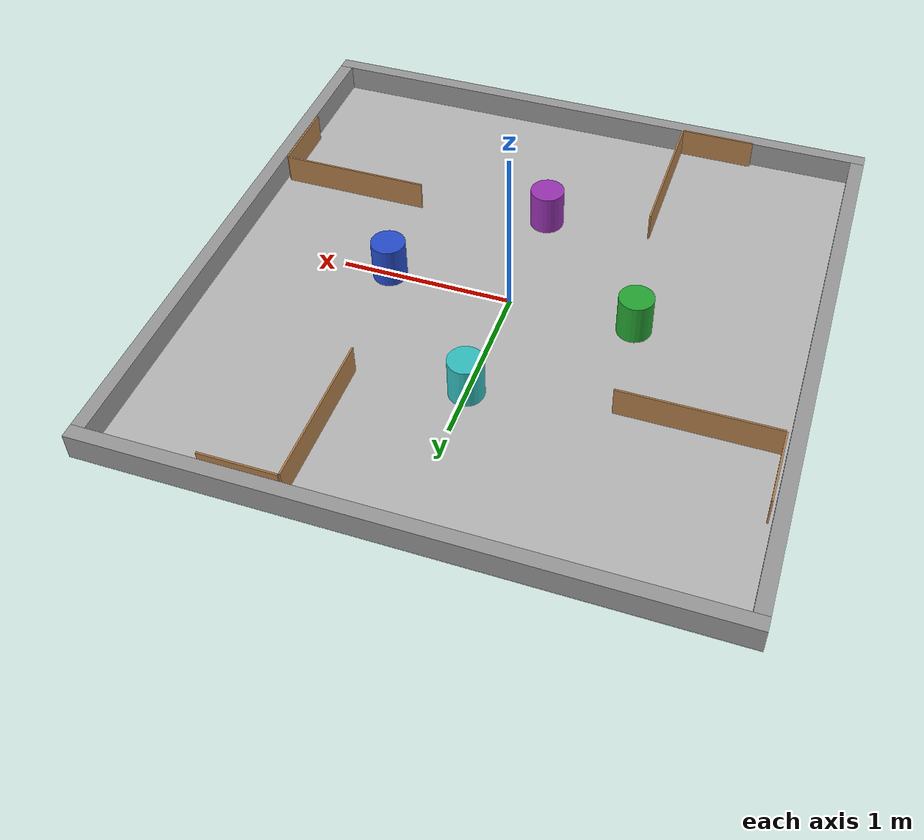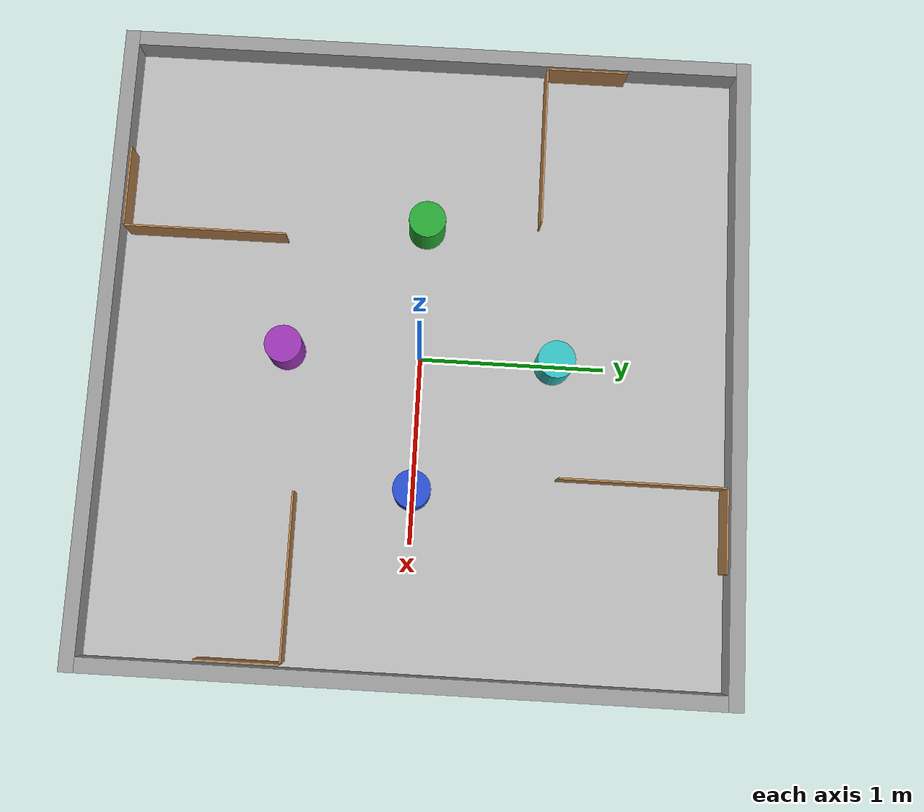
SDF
<sdf version="1.6">
 <world name="default">
  <light name="sun" type="directional">
   <pose>0 0 10 0 -0 0</pose>
   <diffuse>0.8 0.8 0.8 1</diffuse>
   <specular>0.2 0.2 0.2 1</specular>
   <attenuation>
    <range>1000</range>
    <constant>0.9</constant>
    <linear>0.01</linear>
    <quadratic>0.001</quadratic>
   </attenuation>
   <direction>-0.5 0.1 -0.9</direction>
  </light>
  <gravity>0 0 -9.8</gravity>
  <magnetic_field>6e-06 2.3e-05 -4.2e-05</magnetic_field>
  <atmosphere type="adiabatic"/>
  <physics name="default_physics" default="0" type="ode">
   <max_step_size>0.001</max_step_size>
   <real_time_factor>1</real_time_factor>
   <real_time_update_rate>1000</real_time_update_rate>
  </physics>
  <scene><ambient>0.4 0.4 0.4 1</ambient><background>0.7 0.7 0.7 1</background><shadows>1</shadows></scene>
  <spherical_coordinates>
   <surface_model>EARTH_WGS84</surface_model>
   <latitude_deg>0</latitude_deg>
   <longitude_deg>0</longitude_deg>
   <elevation>0</elevation>
   <heading_deg>0</heading_deg>
  </spherical_coordinates>
  <include><uri>model://obstacle_avoidance</uri></include>
  <include><uri>model://cr3_arena_walls</uri></include>
 </world>
</sdf>

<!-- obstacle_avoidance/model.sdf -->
<sdf version="1.4">
<model name="obstacle_avoidance">
  <static>true</static>
    <link name="floor">
      <collision name="collision">
        <geometry>
          <plane>
            <normal>0 0 1</normal>
            <size>3.5 3.5</size>
          </plane>
        </geometry>
        <surface>
          <friction>
            <ode>
              <mu>100</mu>
              <mu2>50</mu2>
            </ode>
          </friction>
        </surface>
      </collision>
      <visual name="visual">
        <cast_shadows>false</cast_shadows>
        <geometry>
          <plane>
            <normal>0 0 1</normal>
            <size>3.5 3.5</size>
          </plane>
        </geometry>
        <material>
          <script>
            <uri>model://obstacle_avoidance/materials/scripts</uri>
            <uri>model://obstacle_avoidance/materials/textures</uri>
            <name>ObstacleAvoidanceFloor/Image</name>
          </script>
        </material>
      </visual>
    </link>
    <link name='BLUE1'>
      <pose frame=''>0.72334 0 0.125 0 0 0</pose>
      <collision name='coll'>
        <geometry>
          <cylinder>
            <radius>0.1</radius>
            <length>0.25</length>
          </cylinder>
        </geometry>
        <max_contacts>10</max_contacts>
        <surface>
          <bounce/>
          <friction>
            <ode/>
          </friction>
          <contact>
            <ode/>
          </contact>
        </surface>
      </collision>
      <visual name='vis'>
        <geometry>
          <cylinder>
            <radius>0.1</radius>
            <length>0.25</length>
          </cylinder>
        </geometry>
        <material>
          <script>
            <uri>file://media/materials/scripts/gazebo.material</uri>
            <name>Gazebo/Blue</name>
          </script>
        </material>
      </visual>
    </link>
    <link name='PURPLE1'>
      <pose frame=''>0 -0.72334 0.125 0 0 0</pose>
      <collision name='coll'>
        <geometry>
          <cylinder>
            <radius>0.1</radius>
            <length>0.25</length>
          </cylinder>
        </geometry>
        <max_contacts>10</max_contacts>
        <surface>
          <bounce/>
          <friction>
            <ode/>
          </friction>
          <contact>
            <ode/>
          </contact>
        </surface>
      </collision>
      <visual name='vis'>
        <geometry>
          <cylinder>
            <radius>0.1</radius>
            <length>0.25</length>
          </cylinder>
        </geometry>
        <material>
          <script>
            <uri>file://media/materials/scripts/gazebo.material</uri>
            <name>Gazebo/Purple</name>
          </script>
        </material>
      </visual>
    </link>
    <link name='GREEN1'>
      <pose frame=''>-0.72334 0 0.125 0 0 0</pose>
      <collision name='coll'>
        <geometry>
          <cylinder>
            <radius>0.1</radius>
            <length>0.25</length>
          </cylinder>
        </geometry>
        <max_contacts>10</max_contacts>
        <surface>
          <bounce/>
          <friction>
            <ode/>
          </friction>
          <contact>
            <ode/>
          </contact>
        </surface>
      </collision>
      <visual name='vis'>
        <geometry>
          <cylinder>
            <radius>0.1</radius>
            <length>0.25</length>
          </cylinder>
        </geometry>
        <material>
          <script>
            <uri>file://media/materials/scripts/gazebo.material</uri>
            <name>Gazebo/Green</name>
          </script>
        </material>
      </visual>
    </link>
    <link name='TURQ1'>
      <pose frame=''>0 0.72334 0.125 0 0 0</pose>
      <collision name='coll'>
        <geometry>
          <cylinder>
            <radius>0.1</radius>
            <length>0.25</length>
          </cylinder>
        </geometry>
        <max_contacts>10</max_contacts>
        <surface>
          <bounce/>
          <friction>
            <ode/>
          </friction>
          <contact>
            <ode/>
          </contact>
        </surface>
      </collision>
      <visual name='vis'>
        <geometry>
          <cylinder>
            <radius>0.1</radius>
            <length>0.25</length>
          </cylinder>
        </geometry>
        <material>
          <script>
            <uri>file://media/materials/scripts/gazebo.material</uri>
            <name>Gazebo/Turquoise</name>
          </script>
        </material>
      </visual>
    </link>
    <link name='L_wall_tl'>
      <pose frame=''>-0.83834 -1.20833 0.09 0 0 0</pose>
      <collision name='long_coll'>
        <geometry>
          <box>
            <size>0.01 0.88 0.18</size>
          </box>
        </geometry>
        <pose frame=''>0.22 0.005 0 0 0 0</pose>
      </collision>
      <visual name='long_vis'>
        <pose frame=''>0.22 0.005 0 0 0 0</pose>
        <geometry>
          <box>
            <size>0.01 0.88 0.18</size>
          </box>
        </geometry>
        <material>
          <script>
            <uri>file://media/materials/scripts/gazebo.material</uri>
            <name>Gazebo/Wood</name>
          </script>
        </material>
      </visual>
      <collision name='short_coll'>
        <geometry>
          <box>
            <size>0.44 0.01 0.18</size>
          </box>
        </geometry>
        <pose frame=''>-0.005 -0.44 0 0 0 0</pose>
      </collision>
      <visual name='short_vis'>
        <pose frame=''>-0.005 -0.44 0 0 0 0</pose>
        <geometry>
          <box>
            <size>0.44 0.01 0.18</size>
          </box>
        </geometry>
        <material>
          <script>
            <uri>file://media/materials/scripts/gazebo.material</uri>
            <name>Gazebo/Wood</name>
          </script>
        </material>
      </visual>
    </link>
    <link name='L_wall_tr'>
      <pose frame=''>-1.20833 0.83834 0.09 0 0 -1.571</pose>
      <collision name='long_coll'>
        <geometry>
          <box>
            <size>0.01 0.88 0.18</size>
          </box>
        </geometry>
        <pose frame=''>0.22 0.005 0 0 0 0</pose>
      </collision>
      <visual name='long_vis'>
        <pose frame=''>0.22 0.005 0 0 0 0</pose>
        <geometry>
          <box>
            <size>0.01 0.88 0.18</size>
          </box>
        </geometry>
        <material>
          <script>
            <uri>file://media/materials/scripts/gazebo.material</uri>
            <name>Gazebo/Wood</name>
          </script>
        </material>
      </visual>
      <collision name='short_coll'>
        <geometry>
          <box>
            <size>0.44 0.01 0.18</size>
          </box>
        </geometry>
        <pose frame=''>-0.005 -0.44 0 0 0 0</pose>
      </collision>
      <visual name='short_vis'>
        <pose frame=''>-0.005 -0.44 0 0 0 0</pose>
        <geometry>
          <box>
            <size>0.44 0.01 0.18</size>
          </box>
        </geometry>
        <material>
          <script>
            <uri>file://media/materials/scripts/gazebo.material</uri>
            <name>Gazebo/Wood</name>
          </script>
        </material>
      </visual>
    </link>
    <link name='L_wall_br'>
      <pose frame=''>0.83834 1.20833 0.09 0 0 -3.142</pose>
      <collision name='long_coll'>
        <geometry>
          <box>
            <size>0.01 0.88 0.18</size>
          </box>
        </geometry>
        <pose frame=''>0.22 0.005 0 0 0 0</pose>
      </collision>
      <visual name='long_vis'>
        <pose frame=''>0.22 0.005 0 0 0 0</pose>
        <geometry>
          <box>
            <size>0.01 0.88 0.18</size>
          </box>
        </geometry>
        <material>
          <script>
            <uri>file://media/materials/scripts/gazebo.material</uri>
            <name>Gazebo/Wood</name>
          </script>
        </material>
      </visual>
      <collision name='short_coll'>
        <geometry>
          <box>
            <size>0.44 0.01 0.18</size>
          </box>
        </geometry>
        <pose frame=''>-0.005 -0.44 0 0 0 0</pose>
      </collision>
      <visual name='short_vis'>
        <pose frame=''>-0.005 -0.44 0 0 0 0</pose>
        <geometry>
          <box>
            <size>0.44 0.01 0.18</size>
          </box>
        </geometry>
        <material>
          <script>
            <uri>file://media/materials/scripts/gazebo.material</uri>
            <name>Gazebo/Wood</name>
          </script>
        </material>
      </visual>
    </link>
    <link name='L_wall_bl'>
      <pose frame=''>1.20833 -0.83834 0.09 0 0 1.571</pose>
      <collision name='long_coll'>
        <geometry>
          <box>
            <size>0.01 0.88 0.18</size>
          </box>
        </geometry>
        <pose frame=''>0.22 0.005 0 0 0 0</pose>
      </collision>
      <visual name='long_vis'>
        <pose frame=''>0.22 0.005 0 0 0 0</pose>
        <geometry>
          <box>
            <size>0.01 0.88 0.18</size>
          </box>
        </geometry>
        <material>
          <script>
            <uri>file://media/materials/scripts/gazebo.material</uri>
            <name>Gazebo/Wood</name>
          </script>
        </material>
      </visual>
      <collision name='short_coll'>
        <geometry>
          <box>
            <size>0.44 0.01 0.18</size>
          </box>
        </geometry>
        <pose frame=''>-0.005 -0.44 0 0 0 0</pose>
      </collision>
      <visual name='short_vis'>
        <pose frame=''>-0.005 -0.44 0 0 0 0</pose>
        <geometry>
          <box>
            <size>0.44 0.01 0.18</size>
          </box>
        </geometry>
        <material>
          <script>
            <uri>file://media/materials/scripts/gazebo.material</uri>
            <name>Gazebo/Wood</name>
          </script>
        </material>
      </visual>
    </link>
  </model>
</sdf>

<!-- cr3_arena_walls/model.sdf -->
<sdf version='1.6'>
  <model name='small_arena_walls'>
    <pose frame=''>0 0 0.08 0 0 0</pose>
    <link name='Right_Wall'>
      <collision name='Right_Wall_Collision'>
        <geometry>
          <box>
            <size>3.50 0.08 0.16</size>
          </box>
        </geometry>
      </collision>
      <visual name='Right_Wall_Visual'>
        <geometry>
          <box>
            <size>3.50 0.08 0.16</size>
          </box>
        </geometry>
        <material>
          <script>
            <uri>file://media/materials/scripts/gazebo.material</uri>
            <name>Gazebo/Grey</name>
          </script>
          <ambient>1 1 1 1</ambient>
        </material>
      </visual>
      <pose frame=''>0 1.71 0 0 0 0</pose>
    </link>
    <link name='Back_Wall'>
      <collision name='Back_Wall_Collision'>
        <geometry>
          <box>
            <size>0.08 3.34 0.16</size>
          </box>
        </geometry>
      </collision>
      <visual name='Back_Wall_Visual'>
        <geometry>
          <box>
            <size>0.08 3.34 0.16</size>
          </box>
        </geometry>
        <material>
          <script>
            <uri>file://media/materials/scripts/gazebo.material</uri>
            <name>Gazebo/Grey</name>
          </script>
          <ambient>1 1 1 1</ambient>
        </material>
      </visual>
      <pose frame=''>-1.71 0 0 0 0 0</pose>
    </link>
    <link name='Left_Wall'>
      <collision name='Left_Wall_Collision'>
        <geometry>
          <box>
            <size>3.50 0.08 0.16</size>
          </box>
        </geometry>
      </collision>
      <visual name='Left_Wall_Visual'>
        <geometry>
          <box>
            <size>3.50 0.08 0.16</size>
          </box>
        </geometry>
        <material>
          <script>
            <uri>file://media/materials/scripts/gazebo.material</uri>
            <name>Gazebo/Grey</name>
          </script>
          <ambient>1 1 1 1</ambient>
        </material>
      </visual>
      <pose frame=''>0 -1.71 0 0 0 0</pose>
    </link>
    <link name='Front_Wall'>
      <collision name='Front_Wall_Collision'>
        <geometry>
          <box>
            <size>0.08 3.34 0.16</size>
          </box>
        </geometry>
      </collision>
      <visual name='Front_Wall_Visual'>
        <geometry>
          <box>
            <size>0.08 3.34 0.16</size>
          </box>
        </geometry>
        <material>
          <script>
            <uri>file://media/materials/scripts/gazebo.material</uri>
            <name>Gazebo/Grey</name>
          </script>
          <ambient>1 1 1 1</ambient>
        </material>
      </visual>
      <pose frame=''>1.71 0 0 0 0 0</pose>
    </link>
    <static>1</static>
  </model>
</sdf>
